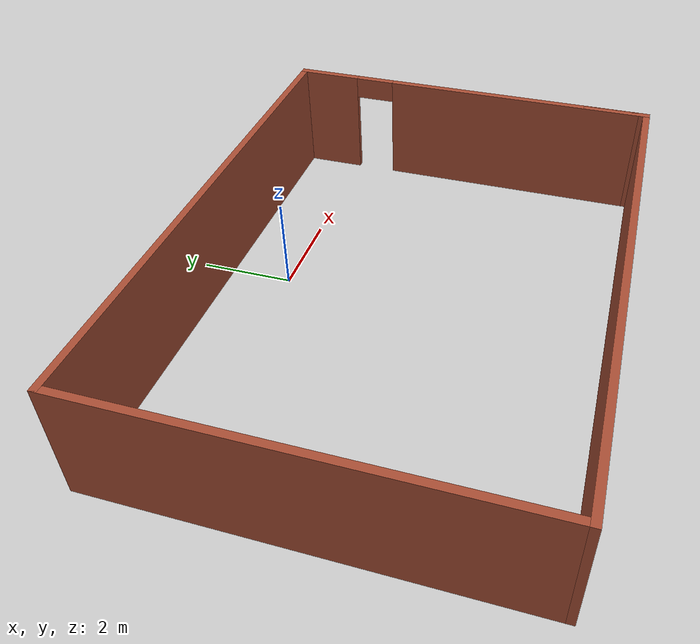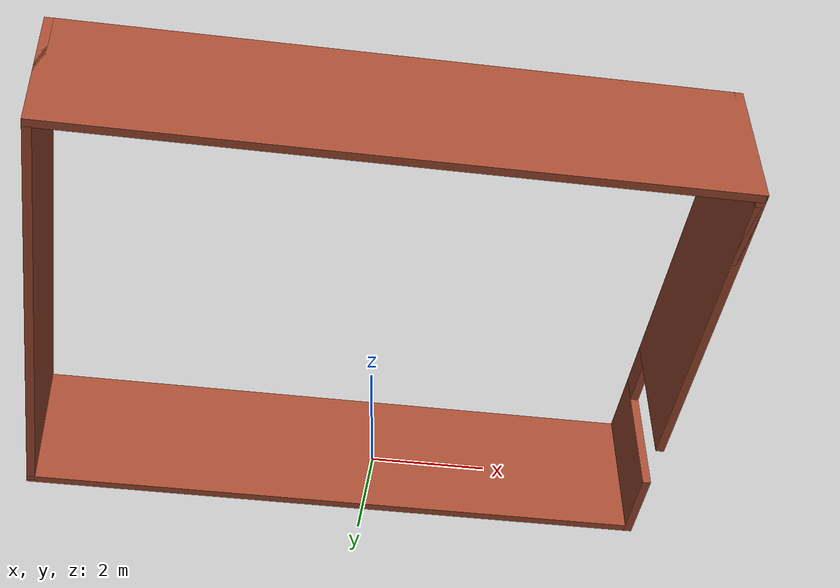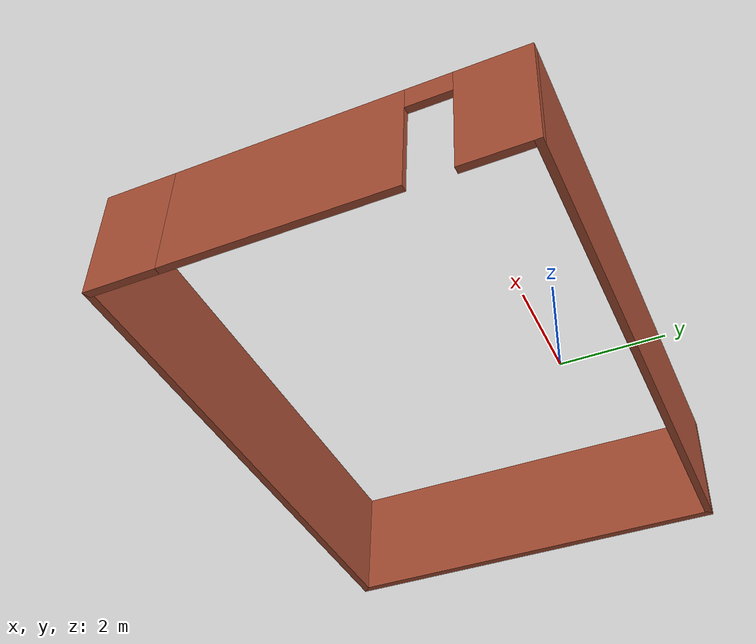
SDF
<?xml version='1.0'?>
<sdf version='1.7'>
  <model name='w1'>
    <pose>-0.511002 -2.78733 0 0 -0 0</pose>
    <link name='Wall_12'>
      <collision name='Wall_12_Collision'>
        <geometry>
          <box>
            <size>11.25 0.15 2.5</size>
          </box>
        </geometry>
        <pose>0 0 1.25 0 -0 0</pose>
      </collision>
      <visual name='Wall_12_Visual'>
        <pose>0 0 1.25 0 -0 0</pose>
        <geometry>
          <box>
            <size>11.25 0.15 2.5</size>
          </box>
        </geometry>
        <material>
          <script>
            <uri>file://media/materials/scripts/gazebo.material</uri>
            <name>Gazebo/Bricks</name>
          </script>
          <ambient>1 1 1 1</ambient>
        </material>
        <meta>
          <layer>0</layer>
        </meta>
      </visual>
      <pose>-0 -4.175 0 0 -0 0</pose>
    </link>
    <link name='Wall_13'>
      <collision name='Wall_13_Collision'>
        <geometry>
          <box>
            <size>1.5 0.15 2.5</size>
          </box>
        </geometry>
        <pose>0 0 1.25 0 -0 0</pose>
      </collision>
      <visual name='Wall_13_Visual'>
        <pose>0 0 1.25 0 -0 0</pose>
        <geometry>
          <box>
            <size>1.5 0.15 2.5</size>
          </box>
        </geometry>
        <material>
          <script>
            <uri>file://media/materials/scripts/gazebo.material</uri>
            <name>Gazebo/Bricks</name>
          </script>
          <ambient>1 1 1 1</ambient>
        </material>
        <meta>
          <layer>0</layer>
        </meta>
      </visual>
      <pose>5.55 -3.5 0 0 -0 1.5708</pose>
    </link>
    <link name='Wall_5'>
      <collision name='Wall_5_Collision'>
        <geometry>
          <box>
            <size>8.5 0.15 2.5</size>
          </box>
        </geometry>
        <pose>0 0 1.25 0 -0 0</pose>
      </collision>
      <visual name='Wall_5_Visual'>
        <pose>0 0 1.25 0 -0 0</pose>
        <geometry>
          <box>
            <size>8.5 0.15 2.5</size>
          </box>
        </geometry>
        <material>
          <script>
            <uri>file://media/materials/scripts/gazebo.material</uri>
            <name>Gazebo/Bricks</name>
          </script>
          <ambient>1 1 1 1</ambient>
        </material>
        <meta>
          <layer>0</layer>
        </meta>
      </visual>
      <pose>-5.55 0 0 0 -0 1.5708</pose>
    </link>
    <link name='Wall_7'>
      <collision name='Wall_7_Collision'>
        <geometry>
          <box>
            <size>11.25 0.15 2.5</size>
          </box>
        </geometry>
        <pose>0 0 1.25 0 -0 0</pose>
      </collision>
      <visual name='Wall_7_Visual'>
        <pose>0 0 1.25 0 -0 0</pose>
        <geometry>
          <box>
            <size>11.25 0.15 2.5</size>
          </box>
        </geometry>
        <material>
          <script>
            <uri>file://media/materials/scripts/gazebo.material</uri>
            <name>Gazebo/Bricks</name>
          </script>
          <ambient>1 1 1 1</ambient>
        </material>
        <meta>
          <layer>0</layer>
        </meta>
      </visual>
      <pose>-0 4.175 0 0 -0 0</pose>
    </link>
    <link name='Wall_8'>
      <pose>5.55 0.125 0 0 -0 -1.5708</pose>
      <visual name='Wall_8_Visual_0'>
        <pose>-3.39294 0 1.25 0 -0 0</pose>
        <geometry>
          <box>
            <size>1.46413 0.15 2.5</size>
          </box>
        </geometry>
        <material>
          <script>
            <uri>file://media/materials/scripts/gazebo.material</uri>
            <name>Gazebo/Bricks</name>
          </script>
          <ambient>1 1 1 1</ambient>
        </material>
        <meta>
          <layer>0</layer>
        </meta>
      </visual>
      <collision name='Wall_8_Collision_0'>
        <geometry>
          <box>
            <size>1.46413 0.15 2.5</size>
          </box>
        </geometry>
        <pose>-3.39294 0 1.25 0 -0 0</pose>
      </collision>
      <visual name='Wall_8_Visual_1'>
        <pose>1.18206 0 1.25 0 -0 0</pose>
        <geometry>
          <box>
            <size>5.88587 0.15 2.5</size>
          </box>
        </geometry>
        <material>
          <script>
            <uri>file://media/materials/scripts/gazebo.material</uri>
            <name>Gazebo/Bricks</name>
          </script>
          <ambient>1 1 1 1</ambient>
        </material>
        <meta>
          <layer>0</layer>
        </meta>
      </visual>
      <collision name='Wall_8_Collision_1'>
        <geometry>
          <box>
            <size>5.88587 0.15 2.5</size>
          </box>
        </geometry>
        <pose>1.18206 0 1.25 0 -0 0</pose>
      </collision>
      <visual name='Wall_8_Visual_2'>
        <pose>-2.21087 0 2.25 0 -0 0</pose>
        <geometry>
          <box>
            <size>0.9 0.15 0.5</size>
          </box>
        </geometry>
        <material>
          <script>
            <uri>file://media/materials/scripts/gazebo.material</uri>
            <name>Gazebo/Bricks</name>
          </script>
          <ambient>1 1 1 1</ambient>
        </material>
        <meta>
          <layer>0</layer>
        </meta>
      </visual>
      <collision name='Wall_8_Collision_2'>
        <geometry>
          <box>
            <size>0.9 0.15 0.5</size>
          </box>
        </geometry>
        <pose>-2.21087 0 2.25 0 -0 0</pose>
      </collision>
    </link>
    <static>1</static>
  </model>
</sdf>
